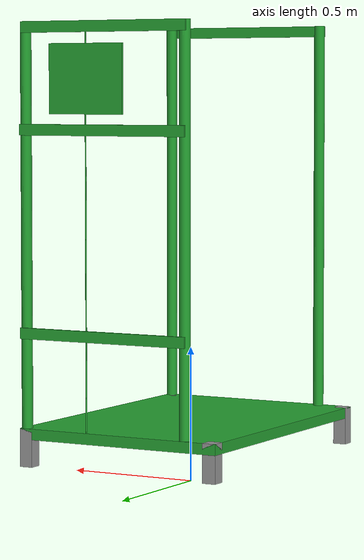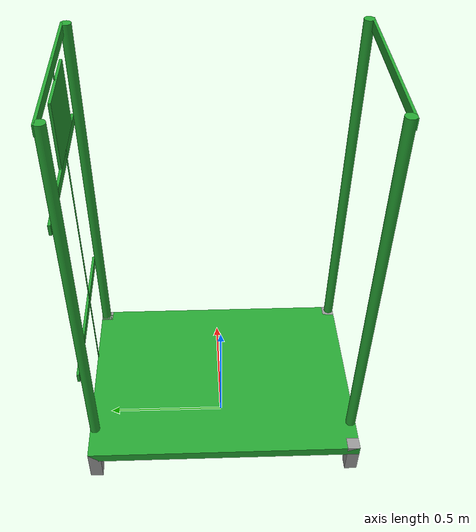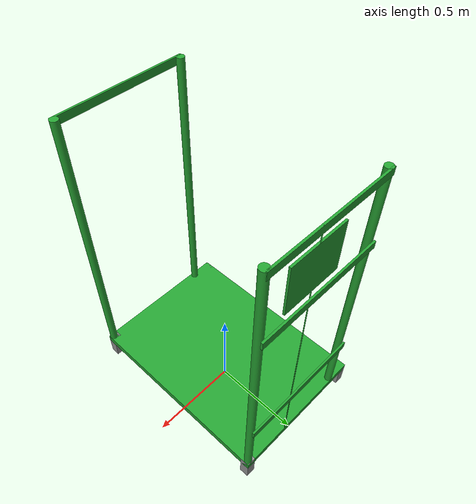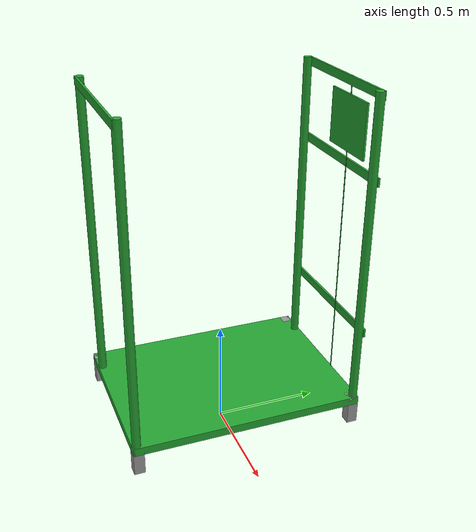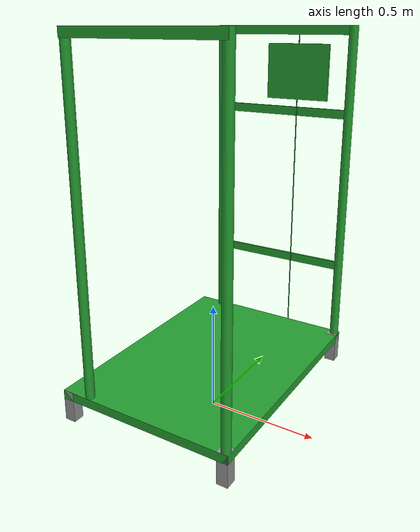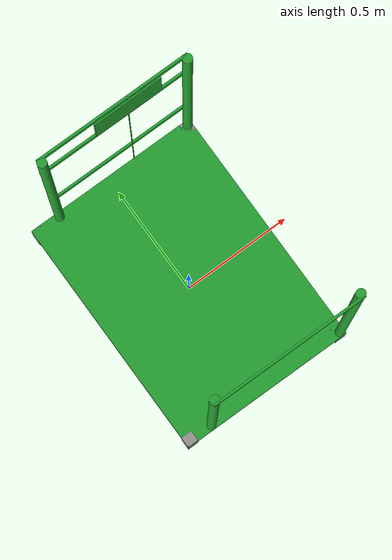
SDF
<?xml version='1.0'?>
<sdf version='1.6'>
  <model name='warehouse_trolley_light2'>
    <link name='link_0'>
      <pose frame=''>0 0 0.22 0 -0 0</pose>
      <inertial>
        <mass>1</mass>
        <inertia>
          <ixx>0.166667</ixx>
          <ixy>0</ixy>
          <ixz>0</ixz>
          <iyy>0.166667</iyy>
          <iyz>0</iyz>
          <izz>0.166667</izz>
        </inertia>
        <pose frame=''>0 0 0 0 -0 0</pose>
      </inertial>
      <self_collide>0</self_collide>
      <kinematic>0</kinematic>
      <visual name='visual'>
        <pose frame=''>0 0 0 0 -0 0</pose>
        <geometry>
          <box>
            <size>0.8 1.1 0.04</size>
          </box>
        </geometry>
        <material>
          <lighting>1</lighting>
          <script>
            <uri>file://media/materials/scripts/gazebo.material</uri>
            <name>Gazebo/Green</name>
          </script>
          <ambient>0 0.4 0 0</ambient>
          <diffuse>0 0.4 0 0</diffuse>
          <specular>0.1 0.1 0.1 1</specular>
          <emissive>0 0 0 1</emissive>
          <shader type='vertex'>
            <normal_map>__default__</normal_map>
          </shader>
        </material>
        <cast_shadows>1</cast_shadows>
        <transparency>0</transparency>
      </visual>
      <collision name='collision'>
        <laser_retro>0</laser_retro>
        <max_contacts>10</max_contacts>
        <pose frame=''>0 0 0 0 -0 0</pose>
        <geometry>
          <box>
            <size>0.8 1.1 0.04</size>
          </box>
        </geometry>
        <surface>
          <friction>
            <ode>
              <mu>1</mu>
              <mu2>1</mu2>
              <fdir1>0 0 0</fdir1>
              <slip1>0</slip1>
              <slip2>0</slip2>
            </ode>
            <torsional>
              <coefficient>1</coefficient>
              <patch_radius>0</patch_radius>
              <surface_radius>0</surface_radius>
              <use_patch_radius>1</use_patch_radius>
              <ode>
                <slip>0</slip>
              </ode>
            </torsional>
          </friction>
          <bounce>
            <restitution_coefficient>0</restitution_coefficient>
            <threshold>1e+06</threshold>
          </bounce>
          <contact>
            <collide_without_contact>0</collide_without_contact>
            <collide_without_contact_bitmask>1</collide_without_contact_bitmask>
            <collide_bitmask>1</collide_bitmask>
            <ode>
              <soft_cfm>0</soft_cfm>
              <soft_erp>0.2</soft_erp>
              <kp>1e+13</kp>
              <kd>1</kd>
              <max_vel>0.01</max_vel>
              <min_depth>0</min_depth>
            </ode>
            <bullet>
              <split_impulse>1</split_impulse>
              <split_impulse_penetration_threshold>-0.01</split_impulse_penetration_threshold>
              <soft_cfm>0</soft_cfm>
              <soft_erp>0.2</soft_erp>
              <kp>1e+13</kp>
              <kd>1</kd>
            </bullet>
          </contact>
        </surface>
      </collision>
    </link>
    <link name='link_0_0'>
      <pose frame=''>-0.375 -0.525 0.17 0 -0 0</pose>
      <inertial>
        <mass>1</mass>
        <inertia>
          <ixx>0.166667</ixx>
          <ixy>0</ixy>
          <ixz>0</ixz>
          <iyy>0.166667</iyy>
          <iyz>0</iyz>
          <izz>0.166667</izz>
        </inertia>
        <pose frame=''>0 0 0 0 -0 0</pose>
      </inertial>
      <self_collide>0</self_collide>
      <kinematic>0</kinematic>
      <visual name='visual'>
        <pose frame=''>0 0 0 0 -0 0</pose>
        <geometry>
          <box>
            <size>0.05 0.05 0.14</size>
          </box>
        </geometry>
        <material>
          <lighting>1</lighting>
          <script>
            <uri>file://media/materials/scripts/gazebo.material</uri>
            <name>Gazebo/Grey</name>
          </script>
          <ambient>0.3 0.3 0.3 1</ambient>
          <diffuse>0.7 0.7 0.7 1</diffuse>
          <specular>0.01 0.01 0.01 1</specular>
          <emissive>0 0 0 1</emissive>
          <shader type='vertex'>
            <normal_map>__default__</normal_map>
          </shader>
        </material>
        <cast_shadows>1</cast_shadows>
        <transparency>0</transparency>
      </visual>
      <collision name='collision'>
        <laser_retro>0</laser_retro>
        <max_contacts>10</max_contacts>
        <pose frame=''>0 0 0 0 -0 0</pose>
        <geometry>
          <box>
            <size>0.05 0.05 0.14</size>
          </box>
        </geometry>
        <surface>
          <friction>
            <ode>
              <mu>1</mu>
              <mu2>1</mu2>
              <fdir1>0 0 0</fdir1>
              <slip1>0</slip1>
              <slip2>0</slip2>
            </ode>
            <torsional>
              <coefficient>1</coefficient>
              <patch_radius>0</patch_radius>
              <surface_radius>0</surface_radius>
              <use_patch_radius>1</use_patch_radius>
              <ode>
                <slip>0</slip>
              </ode>
            </torsional>
          </friction>
          <bounce>
            <restitution_coefficient>0</restitution_coefficient>
            <threshold>1e+06</threshold>
          </bounce>
          <contact>
            <collide_without_contact>0</collide_without_contact>
            <collide_without_contact_bitmask>1</collide_without_contact_bitmask>
            <collide_bitmask>1</collide_bitmask>
            <ode>
              <soft_cfm>0</soft_cfm>
              <soft_erp>0.2</soft_erp>
              <kp>1e+13</kp>
              <kd>1</kd>
              <max_vel>0.01</max_vel>
              <min_depth>0</min_depth>
            </ode>
            <bullet>
              <split_impulse>1</split_impulse>
              <split_impulse_penetration_threshold>-0.01</split_impulse_penetration_threshold>
              <soft_cfm>0</soft_cfm>
              <soft_erp>0.2</soft_erp>
              <kp>1e+13</kp>
              <kd>1</kd>
            </bullet>
          </contact>
        </surface>
      </collision>
    </link>
    <link name='link_0_0_clone'>
      <pose frame=''>0.375 -0.525 0.17 0 -0 0</pose>
      <inertial>
        <mass>1</mass>
        <inertia>
          <ixx>0.166667</ixx>
          <ixy>0</ixy>
          <ixz>0</ixz>
          <iyy>0.166667</iyy>
          <iyz>0</iyz>
          <izz>0.166667</izz>
        </inertia>
        <pose frame=''>0 0 0 0 -0 0</pose>
      </inertial>
      <self_collide>0</self_collide>
      <kinematic>0</kinematic>
      <visual name='visual_0'>
        <pose frame=''>0 0 0 0 -0 0</pose>
        <geometry>
          <box>
            <size>0.05 0.05 0.14</size>
          </box>
        </geometry>
        <material>
          <lighting>1</lighting>
          <script>
            <uri>file://media/materials/scripts/gazebo.material</uri>
            <name>Gazebo/Grey</name>
          </script>
          <ambient>0.3 0.3 0.3 1</ambient>
          <diffuse>0.7 0.7 0.7 1</diffuse>
          <specular>0.01 0.01 0.01 1</specular>
          <emissive>0 0 0 1</emissive>
          <shader type='vertex'>
            <normal_map>__default__</normal_map>
          </shader>
        </material>
        <cast_shadows>1</cast_shadows>
        <transparency>0</transparency>
      </visual>
      <collision name='collision'>
        <laser_retro>0</laser_retro>
        <max_contacts>10</max_contacts>
        <pose frame=''>0 0 0 0 -0 0</pose>
        <geometry>
          <box>
            <size>0.05 0.05 0.14</size>
          </box>
        </geometry>
        <surface>
          <friction>
            <ode>
              <mu>1</mu>
              <mu2>1</mu2>
              <fdir1>0 0 0</fdir1>
              <slip1>0</slip1>
              <slip2>0</slip2>
            </ode>
            <torsional>
              <coefficient>1</coefficient>
              <patch_radius>0</patch_radius>
              <surface_radius>0</surface_radius>
              <use_patch_radius>1</use_patch_radius>
              <ode>
                <slip>0</slip>
              </ode>
            </torsional>
          </friction>
          <bounce>
            <restitution_coefficient>0</restitution_coefficient>
            <threshold>1e+06</threshold>
          </bounce>
          <contact>
            <collide_without_contact>0</collide_without_contact>
            <collide_without_contact_bitmask>1</collide_without_contact_bitmask>
            <collide_bitmask>1</collide_bitmask>
            <ode>
              <soft_cfm>0</soft_cfm>
              <soft_erp>0.2</soft_erp>
              <kp>1e+13</kp>
              <kd>1</kd>
              <max_vel>0.01</max_vel>
              <min_depth>0</min_depth>
            </ode>
            <bullet>
              <split_impulse>1</split_impulse>
              <split_impulse_penetration_threshold>-0.01</split_impulse_penetration_threshold>
              <soft_cfm>0</soft_cfm>
              <soft_erp>0.2</soft_erp>
              <kp>1e+13</kp>
              <kd>1</kd>
            </bullet>
          </contact>
        </surface>
      </collision>
    </link>
    <link name='link_0_0_clone_0'>
      <pose frame=''>-0.375 0.525 0.17 0 -0 0</pose>
      <inertial>
        <mass>1</mass>
        <inertia>
          <ixx>0.166667</ixx>
          <ixy>0</ixy>
          <ixz>0</ixz>
          <iyy>0.166667</iyy>
          <iyz>0</iyz>
          <izz>0.166667</izz>
        </inertia>
        <pose frame=''>0 0 0 0 -0 0</pose>
      </inertial>
      <self_collide>0</self_collide>
      <kinematic>0</kinematic>
      <visual name='visual_0'>
        <pose frame=''>0 0 0 0 -0 0</pose>
        <geometry>
          <box>
            <size>0.05 0.05 0.14</size>
          </box>
        </geometry>
        <material>
          <lighting>1</lighting>
          <script>
            <uri>file://media/materials/scripts/gazebo.material</uri>
            <name>Gazebo/Grey</name>
          </script>
          <ambient>0.3 0.3 0.3 1</ambient>
          <diffuse>0.7 0.7 0.7 1</diffuse>
          <specular>0.01 0.01 0.01 1</specular>
          <emissive>0 0 0 1</emissive>
          <shader type='vertex'>
            <normal_map>__default__</normal_map>
          </shader>
        </material>
        <cast_shadows>1</cast_shadows>
        <transparency>0</transparency>
      </visual>
      <collision name='collision'>
        <laser_retro>0</laser_retro>
        <max_contacts>10</max_contacts>
        <pose frame=''>0 0 0 0 -0 0</pose>
        <geometry>
          <box>
            <size>0.05 0.05 0.14</size>
          </box>
        </geometry>
        <surface>
          <friction>
            <ode>
              <mu>1</mu>
              <mu2>1</mu2>
              <fdir1>0 0 0</fdir1>
              <slip1>0</slip1>
              <slip2>0</slip2>
            </ode>
            <torsional>
              <coefficient>1</coefficient>
              <patch_radius>0</patch_radius>
              <surface_radius>0</surface_radius>
              <use_patch_radius>1</use_patch_radius>
              <ode>
                <slip>0</slip>
              </ode>
            </torsional>
          </friction>
          <bounce>
            <restitution_coefficient>0</restitution_coefficient>
            <threshold>1e+06</threshold>
          </bounce>
          <contact>
            <collide_without_contact>0</collide_without_contact>
            <collide_without_contact_bitmask>1</collide_without_contact_bitmask>
            <collide_bitmask>1</collide_bitmask>
            <ode>
              <soft_cfm>0</soft_cfm>
              <soft_erp>0.2</soft_erp>
              <kp>1e+13</kp>
              <kd>1</kd>
              <max_vel>0.01</max_vel>
              <min_depth>0</min_depth>
            </ode>
            <bullet>
              <split_impulse>1</split_impulse>
              <split_impulse_penetration_threshold>-0.01</split_impulse_penetration_threshold>
              <soft_cfm>0</soft_cfm>
              <soft_erp>0.2</soft_erp>
              <kp>1e+13</kp>
              <kd>1</kd>
            </bullet>
          </contact>
        </surface>
      </collision>
    </link>
    <link name='link_0_0_clone_1'>
      <pose frame=''>0.375 0.525 0.17 0 -0 0</pose>
      <inertial>
        <mass>1</mass>
        <inertia>
          <ixx>0.166667</ixx>
          <ixy>0</ixy>
          <ixz>0</ixz>
          <iyy>0.166667</iyy>
          <iyz>0</iyz>
          <izz>0.166667</izz>
        </inertia>
        <pose frame=''>0 0 0 0 -0 0</pose>
      </inertial>
      <self_collide>0</self_collide>
      <kinematic>0</kinematic>
      <visual name='visual_0'>
        <pose frame=''>0 0 0 0 -0 0</pose>
        <geometry>
          <box>
            <size>0.05 0.05 0.14</size>
          </box>
        </geometry>
        <material>
          <lighting>1</lighting>
          <script>
            <uri>file://media/materials/scripts/gazebo.material</uri>
            <name>Gazebo/Grey</name>
          </script>
          <ambient>0.3 0.3 0.3 1</ambient>
          <diffuse>0.7 0.7 0.7 1</diffuse>
          <specular>0.01 0.01 0.01 1</specular>
          <emissive>0 0 0 1</emissive>
          <shader type='vertex'>
            <normal_map>__default__</normal_map>
          </shader>
        </material>
        <cast_shadows>1</cast_shadows>
        <transparency>0</transparency>
      </visual>
      <collision name='collision'>
        <laser_retro>0</laser_retro>
        <max_contacts>10</max_contacts>
        <pose frame=''>0 0 0 0 -0 0</pose>
        <geometry>
          <box>
            <size>0.05 0.05 0.14</size>
          </box>
        </geometry>
        <surface>
          <friction>
            <ode>
              <mu>1</mu>
              <mu2>1</mu2>
              <fdir1>0 0 0</fdir1>
              <slip1>0</slip1>
              <slip2>0</slip2>
            </ode>
            <torsional>
              <coefficient>1</coefficient>
              <patch_radius>0</patch_radius>
              <surface_radius>0</surface_radius>
              <use_patch_radius>1</use_patch_radius>
              <ode>
                <slip>0</slip>
              </ode>
            </torsional>
          </friction>
          <bounce>
            <restitution_coefficient>0</restitution_coefficient>
            <threshold>1e+06</threshold>
          </bounce>
          <contact>
            <collide_without_contact>0</collide_without_contact>
            <collide_without_contact_bitmask>1</collide_without_contact_bitmask>
            <collide_bitmask>1</collide_bitmask>
            <ode>
              <soft_cfm>0</soft_cfm>
              <soft_erp>0.2</soft_erp>
              <kp>1e+13</kp>
              <kd>1</kd>
              <max_vel>0.01</max_vel>
              <min_depth>0</min_depth>
            </ode>
            <bullet>
              <split_impulse>1</split_impulse>
              <split_impulse_penetration_threshold>-0.01</split_impulse_penetration_threshold>
              <soft_cfm>0</soft_cfm>
              <soft_erp>0.2</soft_erp>
              <kp>1e+13</kp>
              <kd>1</kd>
            </bullet>
          </contact>
        </surface>
      </collision>
    </link>
    <link name='link_0_1'>
      <pose frame=''>0.38 -0.53 0.95 0 -0 0</pose>
      <inertial>
        <mass>1</mass>
        <inertia>
          <ixx>0.145833</ixx>
          <ixy>0</ixy>
          <ixz>0</ixz>
          <iyy>0.145833</iyy>
          <iyz>0</iyz>
          <izz>0.125</izz>
        </inertia>
        <pose frame=''>0 0 0 0 -0 0</pose>
      </inertial>
      <self_collide>0</self_collide>
      <kinematic>0</kinematic>
      <visual name='visual'>
        <pose frame=''>0 0 0 0 -0 0</pose>
        <geometry>
          <cylinder>
            <radius>0.02</radius>
            <length>1.5</length>
          </cylinder>
        </geometry>
        <material>
          <lighting>1</lighting>
          <script>
            <uri>file://media/materials/scripts/gazebo.material</uri>
            <name>Gazebo/Green</name>
          </script>
          <ambient>0 0.4 0 0</ambient>
          <diffuse>0 0.4 0 0</diffuse>
          <specular>0.1 0.1 0.1 1</specular>
          <emissive>0 0 0 1</emissive>
          <shader type='vertex'>
            <normal_map>__default__</normal_map>
          </shader>
        </material>
        <cast_shadows>1</cast_shadows>
        <transparency>0</transparency>
      </visual>
      <collision name='collision'>
        <laser_retro>0</laser_retro>
        <max_contacts>10</max_contacts>
        <pose frame=''>0 0 0 0 -0 0</pose>
        <geometry>
          <cylinder>
            <radius>0.02</radius>
            <length>1.5</length>
          </cylinder>
        </geometry>
        <surface>
          <friction>
            <ode>
              <mu>1</mu>
              <mu2>1</mu2>
              <fdir1>0 0 0</fdir1>
              <slip1>0</slip1>
              <slip2>0</slip2>
            </ode>
            <torsional>
              <coefficient>1</coefficient>
              <patch_radius>0</patch_radius>
              <surface_radius>0</surface_radius>
              <use_patch_radius>1</use_patch_radius>
              <ode>
                <slip>0</slip>
              </ode>
            </torsional>
          </friction>
          <bounce>
            <restitution_coefficient>0</restitution_coefficient>
            <threshold>1e+06</threshold>
          </bounce>
          <contact>
            <collide_without_contact>0</collide_without_contact>
            <collide_without_contact_bitmask>1</collide_without_contact_bitmask>
            <collide_bitmask>1</collide_bitmask>
            <ode>
              <soft_cfm>0</soft_cfm>
              <soft_erp>0.2</soft_erp>
              <kp>1e+13</kp>
              <kd>1</kd>
              <max_vel>0.01</max_vel>
              <min_depth>0</min_depth>
            </ode>
            <bullet>
              <split_impulse>1</split_impulse>
              <split_impulse_penetration_threshold>-0.01</split_impulse_penetration_threshold>
              <soft_cfm>0</soft_cfm>
              <soft_erp>0.2</soft_erp>
              <kp>1e+13</kp>
              <kd>1</kd>
            </bullet>
          </contact>
        </surface>
      </collision>
    </link>
    <link name='link_0_1_clone'>
      <pose frame=''>-0.27 -0.53 0.95 0 -0 0</pose>
      <inertial>
        <mass>1</mass>
        <inertia>
          <ixx>0.145833</ixx>
          <ixy>0</ixy>
          <ixz>0</ixz>
          <iyy>0.145833</iyy>
          <iyz>0</iyz>
          <izz>0.125</izz>
        </inertia>
        <pose frame=''>0 0 0 0 -0 0</pose>
      </inertial>
      <self_collide>0</self_collide>
      <kinematic>0</kinematic>
      <visual name='visual'>
        <pose frame=''>0 0 0 0 -0 0</pose>
        <geometry>
          <cylinder>
            <radius>0.02</radius>
            <length>1.5</length>
          </cylinder>
        </geometry>
        <material>
          <lighting>1</lighting>
          <script>
            <uri>file://media/materials/scripts/gazebo.material</uri>
            <name>Gazebo/Green</name>
          </script>
          <ambient>0 0.4 0 0</ambient>
          <diffuse>0 0.4 0 0</diffuse>
          <specular>0.1 0.1 0.1 1</specular>
          <emissive>0 0 0 1</emissive>
          <shader type='vertex'>
            <normal_map>__default__</normal_map>
          </shader>
        </material>
        <cast_shadows>1</cast_shadows>
        <transparency>0</transparency>
      </visual>
      <collision name='collision'>
        <laser_retro>0</laser_retro>
        <max_contacts>10</max_contacts>
        <pose frame=''>0 0 0 0 -0 0</pose>
        <geometry>
          <cylinder>
            <radius>0.02</radius>
            <length>1.5</length>
          </cylinder>
        </geometry>
        <surface>
          <friction>
            <ode>
              <mu>1</mu>
              <mu2>1</mu2>
              <fdir1>0 0 0</fdir1>
              <slip1>0</slip1>
              <slip2>0</slip2>
            </ode>
            <torsional>
              <coefficient>1</coefficient>
              <patch_radius>0</patch_radius>
              <surface_radius>0</surface_radius>
              <use_patch_radius>1</use_patch_radius>
              <ode>
                <slip>0</slip>
              </ode>
            </torsional>
          </friction>
          <bounce>
            <restitution_coefficient>0</restitution_coefficient>
            <threshold>1e+06</threshold>
          </bounce>
          <contact>
            <collide_without_contact>0</collide_without_contact>
            <collide_without_contact_bitmask>1</collide_without_contact_bitmask>
            <collide_bitmask>1</collide_bitmask>
            <ode>
              <soft_cfm>0</soft_cfm>
              <soft_erp>0.2</soft_erp>
              <kp>1e+13</kp>
              <kd>1</kd>
              <max_vel>0.01</max_vel>
              <min_depth>0</min_depth>
            </ode>
            <bullet>
              <split_impulse>1</split_impulse>
              <split_impulse_penetration_threshold>-0.01</split_impulse_penetration_threshold>
              <soft_cfm>0</soft_cfm>
              <soft_erp>0.2</soft_erp>
              <kp>1e+13</kp>
              <kd>1</kd>
            </bullet>
          </contact>
        </surface>
      </collision>
    </link>
    <link name='link_0_1_clone_2_clone_clone_0'>
      <pose frame=''>0.12 0.5475 0.95 0 -0 0</pose>
      <inertial>
        <mass>1</mass>
        <inertia>
          <ixx>0.145833</ixx>
          <ixy>0</ixy>
          <ixz>0</ixz>
          <iyy>0.145833</iyy>
          <iyz>0</iyz>
          <izz>0.125</izz>
        </inertia>
        <pose frame=''>0 0 0 0 -0 0</pose>
      </inertial>
      <self_collide>0</self_collide>
      <kinematic>0</kinematic>
      <visual name='visual'>
        <pose frame=''>0 0 0 0 -0 0</pose>
        <geometry>
          <cylinder>
            <radius>0.0025</radius>
            <length>1.5</length>
          </cylinder>
        </geometry>
        <material>
          <lighting>1</lighting>
          <script>
            <uri>file://media/materials/scripts/gazebo.material</uri>
            <name>Gazebo/Green</name>
          </script>
          <ambient>0 0.4 0 0</ambient>
          <diffuse>0 0.4 0 0</diffuse>
          <specular>0.1 0.1 0.1 1</specular>
          <emissive>0 0 0 1</emissive>
          <shader type='vertex'>
            <normal_map>__default__</normal_map>
          </shader>
        </material>
        <cast_shadows>1</cast_shadows>
        <transparency>0</transparency>
      </visual>
      <collision name='collision'>
        <laser_retro>0</laser_retro>
        <max_contacts>10</max_contacts>
        <pose frame=''>0 0 0 0 -0 0</pose>
        <geometry>
          <cylinder>
            <radius>0.0025</radius>
            <length>1.5</length>
          </cylinder>
        </geometry>
        <surface>
          <friction>
            <ode>
              <mu>1</mu>
              <mu2>1</mu2>
              <fdir1>0 0 0</fdir1>
              <slip1>0</slip1>
              <slip2>0</slip2>
            </ode>
            <torsional>
              <coefficient>1</coefficient>
              <patch_radius>0</patch_radius>
              <surface_radius>0</surface_radius>
              <use_patch_radius>1</use_patch_radius>
              <ode>
                <slip>0</slip>
              </ode>
            </torsional>
          </friction>
          <bounce>
            <restitution_coefficient>0</restitution_coefficient>
            <threshold>1e+06</threshold>
          </bounce>
          <contact>
            <collide_without_contact>0</collide_without_contact>
            <collide_without_contact_bitmask>1</collide_without_contact_bitmask>
            <collide_bitmask>1</collide_bitmask>
            <ode>
              <soft_cfm>0</soft_cfm>
              <soft_erp>0.2</soft_erp>
              <kp>1e+13</kp>
              <kd>1</kd>
              <max_vel>0.01</max_vel>
              <min_depth>0</min_depth>
            </ode>
            <bullet>
              <split_impulse>1</split_impulse>
              <split_impulse_penetration_threshold>-0.01</split_impulse_penetration_threshold>
              <soft_cfm>0</soft_cfm>
              <soft_erp>0.2</soft_erp>
              <kp>1e+13</kp>
              <kd>1</kd>
            </bullet>
          </contact>
        </surface>
      </collision>
    </link>
    <link name='link_0_1_clone_3'>
      <pose frame=''>0.38 0.53 0.95 0 -0 0</pose>
      <inertial>
        <mass>1</mass>
        <inertia>
          <ixx>0.145833</ixx>
          <ixy>0</ixy>
          <ixz>0</ixz>
          <iyy>0.145833</iyy>
          <iyz>0</iyz>
          <izz>0.125</izz>
        </inertia>
        <pose frame=''>0 0 0 0 -0 0</pose>
      </inertial>
      <self_collide>0</self_collide>
      <kinematic>0</kinematic>
      <visual name='visual'>
        <pose frame=''>0 0 0 0 -0 0</pose>
        <geometry>
          <cylinder>
            <radius>0.02</radius>
            <length>1.5</length>
          </cylinder>
        </geometry>
        <material>
          <lighting>1</lighting>
          <script>
            <uri>file://media/materials/scripts/gazebo.material</uri>
            <name>Gazebo/Green</name>
          </script>
          <ambient>0 0.4 0 0</ambient>
          <diffuse>0 0.4 0 0</diffuse>
          <specular>0.1 0.1 0.1 1</specular>
          <emissive>0 0 0 1</emissive>
          <shader type='vertex'>
            <normal_map>__default__</normal_map>
          </shader>
        </material>
        <cast_shadows>1</cast_shadows>
        <transparency>0</transparency>
      </visual>
      <collision name='collision'>
        <laser_retro>0</laser_retro>
        <max_contacts>10</max_contacts>
        <pose frame=''>0 0 0 0 -0 0</pose>
        <geometry>
          <cylinder>
            <radius>0.02</radius>
            <length>1.5</length>
          </cylinder>
        </geometry>
        <surface>
          <friction>
            <ode>
              <mu>1</mu>
              <mu2>1</mu2>
              <fdir1>0 0 0</fdir1>
              <slip1>0</slip1>
              <slip2>0</slip2>
            </ode>
            <torsional>
              <coefficient>1</coefficient>
              <patch_radius>0</patch_radius>
              <surface_radius>0</surface_radius>
              <use_patch_radius>1</use_patch_radius>
              <ode>
                <slip>0</slip>
              </ode>
            </torsional>
          </friction>
          <bounce>
            <restitution_coefficient>0</restitution_coefficient>
            <threshold>1e+06</threshold>
          </bounce>
          <contact>
            <collide_without_contact>0</collide_without_contact>
            <collide_without_contact_bitmask>1</collide_without_contact_bitmask>
            <collide_bitmask>1</collide_bitmask>
            <ode>
              <soft_cfm>0</soft_cfm>
              <soft_erp>0.2</soft_erp>
              <kp>1e+13</kp>
              <kd>1</kd>
              <max_vel>0.01</max_vel>
              <min_depth>0</min_depth>
            </ode>
            <bullet>
              <split_impulse>1</split_impulse>
              <split_impulse_penetration_threshold>-0.01</split_impulse_penetration_threshold>
              <soft_cfm>0</soft_cfm>
              <soft_erp>0.2</soft_erp>
              <kp>1e+13</kp>
              <kd>1</kd>
            </bullet>
          </contact>
        </surface>
      </collision>
    </link>
    <link name='link_0_1_clone_clone'>
      <pose frame=''>-0.27 0.53 0.95 0 -0 0</pose>
      <inertial>
        <mass>1</mass>
        <inertia>
          <ixx>0.145833</ixx>
          <ixy>0</ixy>
          <ixz>0</ixz>
          <iyy>0.145833</iyy>
          <iyz>0</iyz>
          <izz>0.125</izz>
        </inertia>
        <pose frame=''>0 0 0 0 -0 0</pose>
      </inertial>
      <self_collide>0</self_collide>
      <kinematic>0</kinematic>
      <visual name='visual'>
        <pose frame=''>0 0 0 0 -0 0</pose>
        <geometry>
          <cylinder>
            <radius>0.02</radius>
            <length>1.5</length>
          </cylinder>
        </geometry>
        <material>
          <lighting>1</lighting>
          <script>
            <uri>file://media/materials/scripts/gazebo.material</uri>
            <name>Gazebo/Green</name>
          </script>
          <ambient>0 0.4 0 0</ambient>
          <diffuse>0 0.4 0 0</diffuse>
          <specular>0.1 0.1 0.1 1</specular>
          <emissive>0 0 0 1</emissive>
          <shader type='vertex'>
            <normal_map>__default__</normal_map>
          </shader>
        </material>
        <cast_shadows>1</cast_shadows>
        <transparency>0</transparency>
      </visual>
      <collision name='collision'>
        <laser_retro>0</laser_retro>
        <max_contacts>10</max_contacts>
        <pose frame=''>0 0 0 0 -0 0</pose>
        <geometry>
          <cylinder>
            <radius>0.02</radius>
            <length>1.5</length>
          </cylinder>
        </geometry>
        <surface>
          <friction>
            <ode>
              <mu>1</mu>
              <mu2>1</mu2>
              <fdir1>0 0 0</fdir1>
              <slip1>0</slip1>
              <slip2>0</slip2>
            </ode>
            <torsional>
              <coefficient>1</coefficient>
              <patch_radius>0</patch_radius>
              <surface_radius>0</surface_radius>
              <use_patch_radius>1</use_patch_radius>
              <ode>
                <slip>0</slip>
              </ode>
            </torsional>
          </friction>
          <bounce>
            <restitution_coefficient>0</restitution_coefficient>
            <threshold>1e+06</threshold>
          </bounce>
          <contact>
            <collide_without_contact>0</collide_without_contact>
            <collide_without_contact_bitmask>1</collide_without_contact_bitmask>
            <collide_bitmask>1</collide_bitmask>
            <ode>
              <soft_cfm>0</soft_cfm>
              <soft_erp>0.2</soft_erp>
              <kp>1e+13</kp>
              <kd>1</kd>
              <max_vel>0.01</max_vel>
              <min_depth>0</min_depth>
            </ode>
            <bullet>
              <split_impulse>1</split_impulse>
              <split_impulse_penetration_threshold>-0.01</split_impulse_penetration_threshold>
              <soft_cfm>0</soft_cfm>
              <soft_erp>0.2</soft_erp>
              <kp>1e+13</kp>
              <kd>1</kd>
            </bullet>
          </contact>
        </surface>
      </collision>
    </link>
    <link name='link_0_clone_0'>
      <pose frame=''>0.053658 0.545 1.68 0 -0 0</pose>
      <inertial>
        <mass>1.03622</mass>
        <inertia>
          <ixx>0.172704</ixx>
          <ixy>0</ixy>
          <ixz>0</ixz>
          <iyy>0.179073</iyy>
          <iyz>0</iyz>
          <izz>0.179073</izz>
        </inertia>
        <pose frame=''>0 0 0 0 -0 0</pose>
      </inertial>
      <self_collide>0</self_collide>
      <kinematic>0</kinematic>
      <visual name='visual'>
        <pose frame=''>0 0 0 0 -0 0</pose>
        <geometry>
          <box>
            <size>0.673547 0.01 0.04</size>
          </box>
        </geometry>
        <material>
          <lighting>1</lighting>
          <script>
            <uri>file://media/materials/scripts/gazebo.material</uri>
            <name>Gazebo/Green</name>
          </script>
          <ambient>0 0.4 0 0</ambient>
          <diffuse>0 0.4 0 0</diffuse>
          <specular>0.1 0.1 0.1 1</specular>
          <emissive>0 0 0 1</emissive>
          <shader type='vertex'>
            <normal_map>__default__</normal_map>
          </shader>
        </material>
        <cast_shadows>1</cast_shadows>
        <transparency>0</transparency>
      </visual>
      <collision name='collision'>
        <laser_retro>0</laser_retro>
        <max_contacts>10</max_contacts>
        <pose frame=''>0 0 0 0 -0 0</pose>
        <geometry>
          <box>
            <size>0.673547 0.01 0.04</size>
          </box>
        </geometry>
        <surface>
          <friction>
            <ode>
              <mu>1</mu>
              <mu2>1</mu2>
              <fdir1>0 0 0</fdir1>
              <slip1>0</slip1>
              <slip2>0</slip2>
            </ode>
            <torsional>
              <coefficient>1</coefficient>
              <patch_radius>0</patch_radius>
              <surface_radius>0</surface_radius>
              <use_patch_radius>1</use_patch_radius>
              <ode>
                <slip>0</slip>
              </ode>
            </torsional>
          </friction>
          <bounce>
            <restitution_coefficient>0</restitution_coefficient>
            <threshold>1e+06</threshold>
          </bounce>
          <contact>
            <collide_without_contact>0</collide_without_contact>
            <collide_without_contact_bitmask>1</collide_without_contact_bitmask>
            <collide_bitmask>1</collide_bitmask>
            <ode>
              <soft_cfm>0</soft_cfm>
              <soft_erp>0.2</soft_erp>
              <kp>1e+13</kp>
              <kd>1</kd>
              <max_vel>0.01</max_vel>
              <min_depth>0</min_depth>
            </ode>
            <bullet>
              <split_impulse>1</split_impulse>
              <split_impulse_penetration_threshold>-0.01</split_impulse_penetration_threshold>
              <soft_cfm>0</soft_cfm>
              <soft_erp>0.2</soft_erp>
              <kp>1e+13</kp>
              <kd>1</kd>
            </bullet>
          </contact>
        </surface>
      </collision>
    </link>
    <link name='link_0_clone_0_clone'>
      <pose frame=''>0.053658 0.555 1.315 0 -0 0</pose>
      <inertial>
        <mass>1.03622</mass>
        <inertia>
          <ixx>0.172704</ixx>
          <ixy>0</ixy>
          <ixz>0</ixz>
          <iyy>0.179073</iyy>
          <iyz>0</iyz>
          <izz>0.179073</izz>
        </inertia>
        <pose frame=''>0 0 0 0 -0 0</pose>
      </inertial>
      <self_collide>0</self_collide>
      <kinematic>0</kinematic>
      <visual name='visual'>
        <pose frame=''>0 0 0 0 -0 0</pose>
        <geometry>
          <box>
            <size>0.673547 0.01 0.04</size>
          </box>
        </geometry>
        <material>
          <lighting>1</lighting>
          <script>
            <uri>file://media/materials/scripts/gazebo.material</uri>
            <name>Gazebo/Green</name>
          </script>
          <ambient>0 0.4 0 0</ambient>
          <diffuse>0 0.4 0 0</diffuse>
          <specular>0.1 0.1 0.1 1</specular>
          <emissive>0 0 0 1</emissive>
          <shader type='vertex'>
            <normal_map>__default__</normal_map>
          </shader>
        </material>
        <cast_shadows>1</cast_shadows>
        <transparency>0</transparency>
      </visual>
      <collision name='collision'>
        <laser_retro>0</laser_retro>
        <max_contacts>10</max_contacts>
        <pose frame=''>0 0 0 0 -0 0</pose>
        <geometry>
          <box>
            <size>0.673547 0.01 0.04</size>
          </box>
        </geometry>
        <surface>
          <friction>
            <ode>
              <mu>1</mu>
              <mu2>1</mu2>
              <fdir1>0 0 0</fdir1>
              <slip1>0</slip1>
              <slip2>0</slip2>
            </ode>
            <torsional>
              <coefficient>1</coefficient>
              <patch_radius>0</patch_radius>
              <surface_radius>0</surface_radius>
              <use_patch_radius>1</use_patch_radius>
              <ode>
                <slip>0</slip>
              </ode>
            </torsional>
          </friction>
          <bounce>
            <restitution_coefficient>0</restitution_coefficient>
            <threshold>1e+06</threshold>
          </bounce>
          <contact>
            <collide_without_contact>0</collide_without_contact>
            <collide_without_contact_bitmask>1</collide_without_contact_bitmask>
            <collide_bitmask>1</collide_bitmask>
            <ode>
              <soft_cfm>0</soft_cfm>
              <soft_erp>0.2</soft_erp>
              <kp>1e+13</kp>
              <kd>1</kd>
              <max_vel>0.01</max_vel>
              <min_depth>0</min_depth>
            </ode>
            <bullet>
              <split_impulse>1</split_impulse>
              <split_impulse_penetration_threshold>-0.01</split_impulse_penetration_threshold>
              <soft_cfm>0</soft_cfm>
              <soft_erp>0.2</soft_erp>
              <kp>1e+13</kp>
              <kd>1</kd>
            </bullet>
          </contact>
        </surface>
      </collision>
    </link>
    <link name='link_0_clone_0_clone_0'>
      <pose frame=''>0.053658 -0.545 1.68 0 -0 0</pose>
      <inertial>
        <mass>1.03622</mass>
        <inertia>
          <ixx>0.172704</ixx>
          <ixy>0</ixy>
          <ixz>0</ixz>
          <iyy>0.179073</iyy>
          <iyz>0</iyz>
          <izz>0.179073</izz>
        </inertia>
        <pose frame=''>0 0 0 0 -0 0</pose>
      </inertial>
      <self_collide>0</self_collide>
      <kinematic>0</kinematic>
      <visual name='visual'>
        <pose frame=''>0 0 0 0 -0 0</pose>
        <geometry>
          <box>
            <size>0.673547 0.01 0.04</size>
          </box>
        </geometry>
        <material>
          <lighting>1</lighting>
          <script>
            <uri>file://media/materials/scripts/gazebo.material</uri>
            <name>Gazebo/Green</name>
          </script>
          <ambient>0 0.4 0 0</ambient>
          <diffuse>0 0.4 0 0</diffuse>
          <specular>0.1 0.1 0.1 1</specular>
          <emissive>0 0 0 1</emissive>
          <shader type='vertex'>
            <normal_map>__default__</normal_map>
          </shader>
        </material>
        <cast_shadows>1</cast_shadows>
        <transparency>0</transparency>
      </visual>
      <collision name='collision'>
        <laser_retro>0</laser_retro>
        <max_contacts>10</max_contacts>
        <pose frame=''>0 0 0 0 -0 0</pose>
        <geometry>
          <box>
            <size>0.673547 0.01 0.04</size>
          </box>
        </geometry>
        <surface>
          <friction>
            <ode>
              <mu>1</mu>
              <mu2>1</mu2>
              <fdir1>0 0 0</fdir1>
              <slip1>0</slip1>
              <slip2>0</slip2>
            </ode>
            <torsional>
              <coefficient>1</coefficient>
              <patch_radius>0</patch_radius>
              <surface_radius>0</surface_radius>
              <use_patch_radius>1</use_patch_radius>
              <ode>
                <slip>0</slip>
              </ode>
            </torsional>
          </friction>
          <bounce>
            <restitution_coefficient>0</restitution_coefficient>
            <threshold>1e+06</threshold>
          </bounce>
          <contact>
            <collide_without_contact>0</collide_without_contact>
            <collide_without_contact_bitmask>1</collide_without_contact_bitmask>
            <collide_bitmask>1</collide_bitmask>
            <ode>
              <soft_cfm>0</soft_cfm>
              <soft_erp>0.2</soft_erp>
              <kp>1e+13</kp>
              <kd>1</kd>
              <max_vel>0.01</max_vel>
              <min_depth>0</min_depth>
            </ode>
            <bullet>
              <split_impulse>1</split_impulse>
              <split_impulse_penetration_threshold>-0.01</split_impulse_penetration_threshold>
              <soft_cfm>0</soft_cfm>
              <soft_erp>0.2</soft_erp>
              <kp>1e+13</kp>
              <kd>1</kd>
            </bullet>
          </contact>
        </surface>
      </collision>
    </link>
    <link name='link_0_clone_0_clone_clone_0'>
      <pose frame=''>0.12 0.545 1.49576 0 -0 0</pose>
      <inertial>
        <mass>1.03622</mass>
        <inertia>
          <ixx>0.172704</ixx>
          <ixy>0</ixy>
          <ixz>0</ixz>
          <iyy>0.179073</iyy>
          <iyz>0</iyz>
          <izz>0.179073</izz>
        </inertia>
        <pose frame=''>0 0 0 0 -0 0</pose>
      </inertial>
      <self_collide>0</self_collide>
      <kinematic>0</kinematic>
      <visual name='visual'>
        <pose frame=''>0 0 0 0 -0 0</pose>
        <geometry>
          <box>
            <size>0.3 0.01 0.25</size>
          </box>
        </geometry>
        <material>
          <lighting>1</lighting>
          <script>
            <uri>file://media/materials/scripts/gazebo.material</uri>
            <name>Gazebo/Green</name>
          </script>
          <ambient>0 0.4 0 0</ambient>
          <diffuse>0 0.4 0 0</diffuse>
          <specular>0.1 0.1 0.1 1</specular>
          <emissive>0 0 0 1</emissive>
          <shader type='vertex'>
            <normal_map>__default__</normal_map>
          </shader>
        </material>
        <cast_shadows>1</cast_shadows>
        <transparency>0</transparency>
      </visual>
      <collision name='collision'>
        <laser_retro>0</laser_retro>
        <max_contacts>10</max_contacts>
        <pose frame=''>0 0 0 0 -0 0</pose>
        <geometry>
          <box>
            <size>0.3 0.01 0.25</size>
          </box>
        </geometry>
        <surface>
          <friction>
            <ode>
              <mu>1</mu>
              <mu2>1</mu2>
              <fdir1>0 0 0</fdir1>
              <slip1>0</slip1>
              <slip2>0</slip2>
            </ode>
            <torsional>
              <coefficient>1</coefficient>
              <patch_radius>0</patch_radius>
              <surface_radius>0</surface_radius>
              <use_patch_radius>1</use_patch_radius>
              <ode>
                <slip>0</slip>
              </ode>
            </torsional>
          </friction>
          <bounce>
            <restitution_coefficient>0</restitution_coefficient>
            <threshold>1e+06</threshold>
          </bounce>
          <contact>
            <collide_without_contact>0</collide_without_contact>
            <collide_without_contact_bitmask>1</collide_without_contact_bitmask>
            <collide_bitmask>1</collide_bitmask>
            <ode>
              <soft_cfm>0</soft_cfm>
              <soft_erp>0.2</soft_erp>
              <kp>1e+13</kp>
              <kd>1</kd>
              <max_vel>0.01</max_vel>
              <min_depth>0</min_depth>
            </ode>
            <bullet>
              <split_impulse>1</split_impulse>
              <split_impulse_penetration_threshold>-0.01</split_impulse_penetration_threshold>
              <soft_cfm>0</soft_cfm>
              <soft_erp>0.2</soft_erp>
              <kp>1e+13</kp>
              <kd>1</kd>
            </bullet>
          </contact>
        </surface>
      </collision>
    </link>
    <link name='link_0_clone_0_clone_clone_clone'>
      <pose frame=''>0.053658 0.555 0.585 0 -0 0</pose>
      <inertial>
        <mass>1.03622</mass>
        <inertia>
          <ixx>0.172704</ixx>
          <ixy>0</ixy>
          <ixz>0</ixz>
          <iyy>0.179073</iyy>
          <iyz>0</iyz>
          <izz>0.179073</izz>
        </inertia>
        <pose frame=''>0 0 0 0 -0 0</pose>
      </inertial>
      <self_collide>0</self_collide>
      <kinematic>0</kinematic>
      <visual name='visual'>
        <pose frame=''>0 0 0 0 -0 0</pose>
        <geometry>
          <box>
            <size>0.673547 0.01 0.04</size>
          </box>
        </geometry>
        <material>
          <lighting>1</lighting>
          <script>
            <uri>file://media/materials/scripts/gazebo.material</uri>
            <name>Gazebo/Green</name>
          </script>
          <ambient>0 0.4 0 0</ambient>
          <diffuse>0 0.4 0 0</diffuse>
          <specular>0.1 0.1 0.1 1</specular>
          <emissive>0 0 0 1</emissive>
          <shader type='vertex'>
            <normal_map>__default__</normal_map>
          </shader>
        </material>
        <cast_shadows>1</cast_shadows>
        <transparency>0</transparency>
      </visual>
      <collision name='collision'>
        <laser_retro>0</laser_retro>
        <max_contacts>10</max_contacts>
        <pose frame=''>0 0 0 0 -0 0</pose>
        <geometry>
          <box>
            <size>0.673547 0.01 0.04</size>
          </box>
        </geometry>
        <surface>
          <friction>
            <ode>
              <mu>1</mu>
              <mu2>1</mu2>
              <fdir1>0 0 0</fdir1>
              <slip1>0</slip1>
              <slip2>0</slip2>
            </ode>
            <torsional>
              <coefficient>1</coefficient>
              <patch_radius>0</patch_radius>
              <surface_radius>0</surface_radius>
              <use_patch_radius>1</use_patch_radius>
              <ode>
                <slip>0</slip>
              </ode>
            </torsional>
          </friction>
          <bounce>
            <restitution_coefficient>0</restitution_coefficient>
            <threshold>1e+06</threshold>
          </bounce>
          <contact>
            <collide_without_contact>0</collide_without_contact>
            <collide_without_contact_bitmask>1</collide_without_contact_bitmask>
            <collide_bitmask>1</collide_bitmask>
            <ode>
              <soft_cfm>0</soft_cfm>
              <soft_erp>0.2</soft_erp>
              <kp>1e+13</kp>
              <kd>1</kd>
              <max_vel>0.01</max_vel>
              <min_depth>0</min_depth>
            </ode>
            <bullet>
              <split_impulse>1</split_impulse>
              <split_impulse_penetration_threshold>-0.01</split_impulse_penetration_threshold>
              <soft_cfm>0</soft_cfm>
              <soft_erp>0.2</soft_erp>
              <kp>1e+13</kp>
              <kd>1</kd>
            </bullet>
          </contact>
        </surface>
      </collision>
    </link>
    <joint name='link_0_0_JOINT_1' type='fixed'>
      <parent>link_0_0</parent>
      <child>link_0</child>
      <pose frame=''>0 0 0 0 -0 0</pose>
      <physics>
        <ode>
          <limit>
            <cfm>0</cfm>
            <erp>0.2</erp>
          </limit>
          <suspension>
            <cfm>0</cfm>
            <erp>0.2</erp>
          </suspension>
        </ode>
      </physics>
    </joint>
    <joint name='link_0_0_clone_0_JOINT_6' type='fixed'>
      <parent>link_0_0_clone_0</parent>
      <child>link_0</child>
      <pose frame=''>0 0 0 0 -0 0</pose>
      <physics>
        <ode>
          <limit>
            <cfm>0</cfm>
            <erp>0.2</erp>
          </limit>
          <suspension>
            <cfm>0</cfm>
            <erp>0.2</erp>
          </suspension>
        </ode>
      </physics>
    </joint>
    <joint name='link_0_0_clone_1_JOINT_8' type='fixed'>
      <parent>link_0_0_clone_1</parent>
      <child>link_0</child>
      <pose frame=''>0 0 0 0 -0 0</pose>
      <physics>
        <ode>
          <limit>
            <cfm>0</cfm>
            <erp>0.2</erp>
          </limit>
          <suspension>
            <cfm>0</cfm>
            <erp>0.2</erp>
          </suspension>
        </ode>
      </physics>
    </joint>
    <joint name='link_0_0_clone_JOINT_4' type='fixed'>
      <parent>link_0_0_clone</parent>
      <child>link_0</child>
      <pose frame=''>0 0 0 0 -0 0</pose>
      <physics>
        <ode>
          <limit>
            <cfm>0</cfm>
            <erp>0.2</erp>
          </limit>
          <suspension>
            <cfm>0</cfm>
            <erp>0.2</erp>
          </suspension>
        </ode>
      </physics>
    </joint>
    <joint name='link_0_1_JOINT_1' type='fixed'>
      <parent>link_0_1</parent>
      <child>link_0</child>
      <pose frame=''>0 0 0 0 -0 0</pose>
      <physics>
        <ode>
          <limit>
            <cfm>0</cfm>
            <erp>0.2</erp>
          </limit>
          <suspension>
            <cfm>0</cfm>
            <erp>0.2</erp>
          </suspension>
        </ode>
      </physics>
    </joint>
    <joint name='link_0_1_JOINT_21' type='fixed'>
      <parent>link_0_1</parent>
      <child>link_0_clone_0_clone_0</child>
      <pose frame=''>0 0 0 0 -0 0</pose>
      <physics>
        <ode>
          <limit>
            <cfm>0</cfm>
            <erp>0.2</erp>
          </limit>
          <suspension>
            <cfm>0</cfm>
            <erp>0.2</erp>
          </suspension>
        </ode>
      </physics>
    </joint>
    <joint name='link_0_1_clone_2_clone_clone_0_JOINT_37' type='fixed'>
      <parent>link_0_1_clone_2_clone_clone_0</parent>
      <child>link_0_clone_0_clone_clone_0</child>
      <pose frame=''>0 0 0 0 -0 0</pose>
      <physics>
        <ode>
          <limit>
            <cfm>0</cfm>
            <erp>0.2</erp>
          </limit>
          <suspension>
            <cfm>0</cfm>
            <erp>0.2</erp>
          </suspension>
        </ode>
      </physics>
    </joint>
    <joint name='link_0_1_clone_2_clone_clone_0_JOINT_4' type='fixed'>
      <parent>link_0_1_clone_2_clone_clone_0</parent>
      <child>link_0</child>
      <pose frame=''>0 0 0 0 -0 0</pose>
      <physics>
        <ode>
          <limit>
            <cfm>0</cfm>
            <erp>0.2</erp>
          </limit>
          <suspension>
            <cfm>0</cfm>
            <erp>0.2</erp>
          </suspension>
        </ode>
      </physics>
    </joint>
    <joint name='link_0_1_clone_3_JOINT_16' type='fixed'>
      <parent>link_0_1_clone_3</parent>
      <child>link_0_clone_0_clone_clone_clone</child>
      <pose frame=''>0 0 0 0 -0 0</pose>
      <physics>
        <ode>
          <limit>
            <cfm>0</cfm>
            <erp>0.2</erp>
          </limit>
          <suspension>
            <cfm>0</cfm>
            <erp>0.2</erp>
          </suspension>
        </ode>
      </physics>
    </joint>
    <joint name='link_0_1_clone_3_JOINT_1' type='fixed'>
      <parent>link_0_1_clone_3</parent>
      <child>link_0_clone_0</child>
      <pose frame=''>0 0 0 0 -0 0</pose>
      <physics>
        <ode>
          <limit>
            <cfm>0</cfm>
            <erp>0.2</erp>
          </limit>
          <suspension>
            <cfm>0</cfm>
            <erp>0.2</erp>
          </suspension>
        </ode>
      </physics>
    </joint>
    <joint name='link_0_1_clone_3_JOINT_8_0' type='fixed'>
      <parent>link_0_1_clone_3</parent>
      <child>link_0_clone_0_clone</child>
      <pose frame=''>0 0 0 0 -0 0</pose>
      <physics>
        <ode>
          <limit>
            <cfm>0</cfm>
            <erp>0.2</erp>
          </limit>
          <suspension>
            <cfm>0</cfm>
            <erp>0.2</erp>
          </suspension>
        </ode>
      </physics>
    </joint>
    <joint name='link_0_1_clone_3_JOINT_8' type='fixed'>
      <parent>link_0_1_clone_3</parent>
      <child>link_0</child>
      <pose frame=''>0 0 0 0 -0 0</pose>
      <physics>
        <ode>
          <limit>
            <cfm>0</cfm>
            <erp>0.2</erp>
          </limit>
          <suspension>
            <cfm>0</cfm>
            <erp>0.2</erp>
          </suspension>
        </ode>
      </physics>
    </joint>
    <joint name='link_0_1_clone_JOINT_20' type='fixed'>
      <parent>link_0_1_clone</parent>
      <child>link_0_clone_0_clone_0</child>
      <pose frame=''>0 0 0 0 -0 0</pose>
      <physics>
        <ode>
          <limit>
            <cfm>0</cfm>
            <erp>0.2</erp>
          </limit>
          <suspension>
            <cfm>0</cfm>
            <erp>0.2</erp>
          </suspension>
        </ode>
      </physics>
    </joint>
    <joint name='link_0_1_clone_JOINT_3' type='fixed'>
      <parent>link_0_1_clone</parent>
      <child>link_0</child>
      <pose frame=''>0 0 0 0 -0 0</pose>
      <physics>
        <ode>
          <limit>
            <cfm>0</cfm>
            <erp>0.2</erp>
          </limit>
          <suspension>
            <cfm>0</cfm>
            <erp>0.2</erp>
          </suspension>
        </ode>
      </physics>
    </joint>
    <joint name='link_0_1_clone_clone_JOINT_0' type='fixed'>
      <parent>link_0_1_clone_clone</parent>
      <child>link_0_clone_0</child>
      <pose frame=''>0 0 0 0 -0 0</pose>
      <physics>
        <ode>
          <limit>
            <cfm>0</cfm>
            <erp>0.2</erp>
          </limit>
          <suspension>
            <cfm>0</cfm>
            <erp>0.2</erp>
          </suspension>
        </ode>
      </physics>
    </joint>
    <joint name='link_0_1_clone_clone_JOINT_15' type='fixed'>
      <parent>link_0_1_clone_clone</parent>
      <child>link_0_clone_0_clone_clone_clone</child>
      <pose frame=''>0 0 0 0 -0 0</pose>
      <physics>
        <ode>
          <limit>
            <cfm>0</cfm>
            <erp>0.2</erp>
          </limit>
          <suspension>
            <cfm>0</cfm>
            <erp>0.2</erp>
          </suspension>
        </ode>
      </physics>
    </joint>
    <joint name='link_0_1_clone_clone_JOINT_5' type='fixed'>
      <parent>link_0_1_clone_clone</parent>
      <child>link_0</child>
      <pose frame=''>0 0 0 0 -0 0</pose>
      <physics>
        <ode>
          <limit>
            <cfm>0</cfm>
            <erp>0.2</erp>
          </limit>
          <suspension>
            <cfm>0</cfm>
            <erp>0.2</erp>
          </suspension>
        </ode>
      </physics>
    </joint>
    <joint name='link_0_1_clone_clone_JOINT_7' type='fixed'>
      <parent>link_0_1_clone_clone</parent>
      <child>link_0_clone_0_clone</child>
      <pose frame=''>0 0 0 0 -0 0</pose>
      <physics>
        <ode>
          <limit>
            <cfm>0</cfm>
            <erp>0.2</erp>
          </limit>
          <suspension>
            <cfm>0</cfm>
            <erp>0.2</erp>
          </suspension>
        </ode>
      </physics>
    </joint>
    <joint name='link_0_JOINT_0_0' type='fixed'>
      <parent>link_0</parent>
      <child>link_0_1</child>
      <pose frame=''>0 0 0 0 -0 0</pose>
      <physics>
        <ode>
          <limit>
            <cfm>0</cfm>
            <erp>0.2</erp>
          </limit>
          <suspension>
            <cfm>0</cfm>
            <erp>0.2</erp>
          </suspension>
        </ode>
      </physics>
    </joint>
    <joint name='link_0_JOINT_0' type='fixed'>
      <parent>link_0</parent>
      <child>link_0_0</child>
      <pose frame=''>0 0 0 0 -0 0</pose>
      <physics>
        <ode>
          <limit>
            <cfm>0</cfm>
            <erp>0.2</erp>
          </limit>
          <suspension>
            <cfm>0</cfm>
            <erp>0.2</erp>
          </suspension>
        </ode>
      </physics>
    </joint>
    <joint name='link_0_JOINT_2_0' type='fixed'>
      <parent>link_0</parent>
      <child>link_0_1_clone</child>
      <pose frame=''>0 0 0 0 -0 0</pose>
      <physics>
        <ode>
          <limit>
            <cfm>0</cfm>
            <erp>0.2</erp>
          </limit>
          <suspension>
            <cfm>0</cfm>
            <erp>0.2</erp>
          </suspension>
        </ode>
      </physics>
    </joint>
    <joint name='link_0_JOINT_2' type='fixed'>
      <parent>link_0</parent>
      <child>link_0_0_clone</child>
      <pose frame=''>0 0 0 0 -0 0</pose>
      <physics>
        <ode>
          <limit>
            <cfm>0</cfm>
            <erp>0.2</erp>
          </limit>
          <suspension>
            <cfm>0</cfm>
            <erp>0.2</erp>
          </suspension>
        </ode>
      </physics>
    </joint>
    <joint name='link_0_JOINT_3' type='fixed'>
      <parent>link_0</parent>
      <child>link_0_1_clone_2_clone_clone_0</child>
      <pose frame=''>0 0 0 0 -0 0</pose>
      <physics>
        <ode>
          <limit>
            <cfm>0</cfm>
            <erp>0.2</erp>
          </limit>
          <suspension>
            <cfm>0</cfm>
            <erp>0.2</erp>
          </suspension>
        </ode>
      </physics>
    </joint>
    <joint name='link_0_JOINT_4' type='fixed'>
      <parent>link_0</parent>
      <child>link_0_1_clone_clone</child>
      <pose frame=''>0 0 0 0 -0 0</pose>
      <physics>
        <ode>
          <limit>
            <cfm>0</cfm>
            <erp>0.2</erp>
          </limit>
          <suspension>
            <cfm>0</cfm>
            <erp>0.2</erp>
          </suspension>
        </ode>
      </physics>
    </joint>
    <joint name='link_0_JOINT_5' type='fixed'>
      <parent>link_0</parent>
      <child>link_0_0_clone_0</child>
      <pose frame=''>0 0 0 0 -0 0</pose>
      <physics>
        <ode>
          <limit>
            <cfm>0</cfm>
            <erp>0.2</erp>
          </limit>
          <suspension>
            <cfm>0</cfm>
            <erp>0.2</erp>
          </suspension>
        </ode>
      </physics>
    </joint>
    <joint name='link_0_JOINT_6' type='fixed'>
      <parent>link_0</parent>
      <child>link_0_1_clone_3</child>
      <pose frame=''>0 0 0 0 -0 0</pose>
      <physics>
        <ode>
          <limit>
            <cfm>0</cfm>
            <erp>0.2</erp>
          </limit>
          <suspension>
            <cfm>0</cfm>
            <erp>0.2</erp>
          </suspension>
        </ode>
      </physics>
    </joint>
    <joint name='link_0_JOINT_7' type='fixed'>
      <parent>link_0</parent>
      <child>link_0_0_clone_1</child>
      <pose frame=''>0 0 0 0 -0 0</pose>
      <physics>
        <ode>
          <limit>
            <cfm>0</cfm>
            <erp>0.2</erp>
          </limit>
          <suspension>
            <cfm>0</cfm>
            <erp>0.2</erp>
          </suspension>
        </ode>
      </physics>
    </joint>
    <joint name='link_0_clone_0_JOINT_3' type='fixed'>
      <parent>link_0_clone_0</parent>
      <child>link_0_1_clone_3</child>
      <pose frame=''>0 0 0 0 -0 0</pose>
      <physics>
        <ode>
          <limit>
            <cfm>0</cfm>
            <erp>0.2</erp>
          </limit>
          <suspension>
            <cfm>0</cfm>
            <erp>0.2</erp>
          </suspension>
        </ode>
      </physics>
    </joint>
    <joint name='link_0_clone_0_clone_0_JOINT_22' type='fixed'>
      <parent>link_0_clone_0_clone_0</parent>
      <child>link_0_1_clone</child>
      <pose frame=''>0 0 0 0 -0 0</pose>
      <physics>
        <ode>
          <limit>
            <cfm>0</cfm>
            <erp>0.2</erp>
          </limit>
          <suspension>
            <cfm>0</cfm>
            <erp>0.2</erp>
          </suspension>
        </ode>
      </physics>
    </joint>
    <joint name='link_0_clone_0_clone_0_JOINT_23' type='fixed'>
      <parent>link_0_clone_0_clone_0</parent>
      <child>link_0_1</child>
      <pose frame=''>0 0 0 0 -0 0</pose>
      <physics>
        <ode>
          <limit>
            <cfm>0</cfm>
            <erp>0.2</erp>
          </limit>
          <suspension>
            <cfm>0</cfm>
            <erp>0.2</erp>
          </suspension>
        </ode>
      </physics>
    </joint>
    <joint name='link_0_clone_0_clone_JOINT_10' type='fixed'>
      <parent>link_0_clone_0_clone</parent>
      <child>link_0_1_clone_3</child>
      <pose frame=''>0 0 0 0 -0 0</pose>
      <physics>
        <ode>
          <limit>
            <cfm>0</cfm>
            <erp>0.2</erp>
          </limit>
          <suspension>
            <cfm>0</cfm>
            <erp>0.2</erp>
          </suspension>
        </ode>
      </physics>
    </joint>
    <joint name='link_0_clone_0_clone_JOINT_9' type='fixed'>
      <parent>link_0_clone_0_clone</parent>
      <child>link_0_1_clone_clone</child>
      <pose frame=''>0 0 0 0 -0 0</pose>
      <physics>
        <ode>
          <limit>
            <cfm>0</cfm>
            <erp>0.2</erp>
          </limit>
          <suspension>
            <cfm>0</cfm>
            <erp>0.2</erp>
          </suspension>
        </ode>
      </physics>
    </joint>
    <joint name='link_0_clone_0_clone_clone_0_JOINT_38' type='fixed'>
      <parent>link_0_clone_0_clone_clone_0</parent>
      <child>link_0_1_clone_2_clone_clone_0</child>
      <pose frame=''>0 0 0 0 -0 0</pose>
      <physics>
        <ode>
          <limit>
            <cfm>0</cfm>
            <erp>0.2</erp>
          </limit>
          <suspension>
            <cfm>0</cfm>
            <erp>0.2</erp>
          </suspension>
        </ode>
      </physics>
    </joint>
    <joint name='link_0_clone_0_clone_clone_clone_JOINT_17' type='fixed'>
      <parent>link_0_clone_0_clone_clone_clone</parent>
      <child>link_0_1_clone_clone</child>
      <pose frame=''>0 0 0 0 -0 0</pose>
      <physics>
        <ode>
          <limit>
            <cfm>0</cfm>
            <erp>0.2</erp>
          </limit>
          <suspension>
            <cfm>0</cfm>
            <erp>0.2</erp>
          </suspension>
        </ode>
      </physics>
    </joint>
    <joint name='link_0_clone_0_clone_clone_clone_JOINT_18' type='fixed'>
      <parent>link_0_clone_0_clone_clone_clone</parent>
      <child>link_0_1_clone_3</child>
      <pose frame=''>0 0 0 0 -0 0</pose>
      <physics>
        <ode>
          <limit>
            <cfm>0</cfm>
            <erp>0.2</erp>
          </limit>
          <suspension>
            <cfm>0</cfm>
            <erp>0.2</erp>
          </suspension>
        </ode>
      </physics>
    </joint>
    <static>0</static>
    <allow_auto_disable>1</allow_auto_disable>
  </model>
</sdf>
